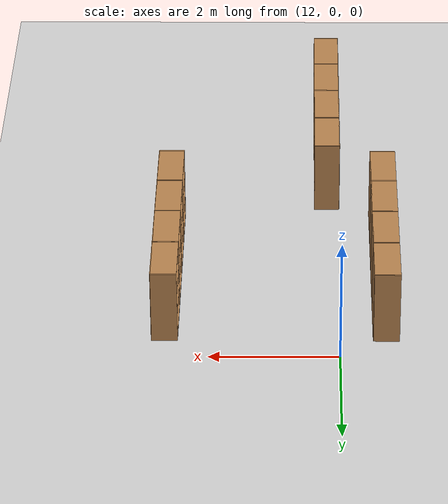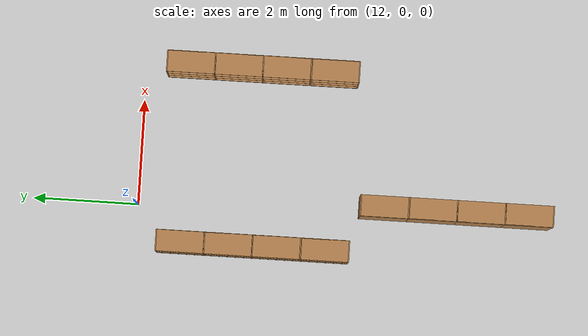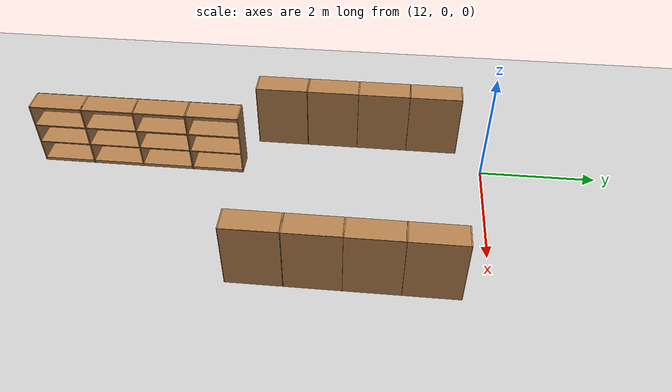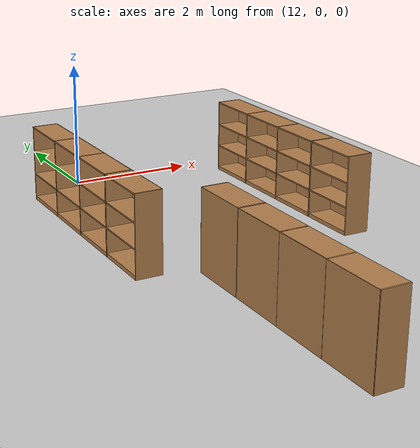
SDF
<sdf version="1.6">
 <world name="default">
  <model name="ground_plane">
   <static>1</static>
   <link name="link">
    <collision name="collision">
     <geometry><plane><normal>0 0 1</normal><size>100 100</size></plane></geometry>
     <surface><friction><ode><mu>100</mu><mu2>50</mu2></ode></friction></surface>
    </collision>
    <visual name="visual">
     <cast_shadows>0</cast_shadows>
     <geometry><plane><normal>0 0 1</normal><size>100 100</size></plane></geometry>
     <material>
      <script><uri>file://media/materials/scripts/gazebo.material</uri><name>Gazebo/Grey</name></script>
     </material>
    </visual>
   </link>
  </model>
  <model name="Bookself-4_clone_14_clone_3_clone_clone_1_clone_1">
   <model name="Bookself-3">
    <model name="bookshelf_0">
     <static>1</static>
     <link name="link">
      <inertial><mass>1</mass></inertial>
      <collision name="back">
       <pose>0 0.005 0.6 0 -0 0</pose>
       <geometry><box><size>0.9 0.01 1.2</size></box></geometry>
      </collision>
      <visual name="visual1">
       <pose>0 0.005 0.6 0 -0 0</pose>
       <geometry><box><size>0.9 0.01 1.2</size></box></geometry>
       <material>
        <script><uri>file://media/materials/scripts/gazebo.material</uri><name>Gazebo/Wood</name></script>
       </material>
      </visual>
      <collision name="left_side">
       <pose>0.45 -0.195 0.6 0 -0 0</pose>
       <geometry><box><size>0.02 0.4 1.2</size></box></geometry>
      </collision>
      <visual name="visual2">
       <pose>0.45 -0.195 0.6 0 -0 0</pose>
       <geometry><box><size>0.02 0.4 1.2</size></box></geometry>
       <material>
        <script><uri>file://media/materials/scripts/gazebo.material</uri><name>Gazebo/Wood</name></script>
       </material>
      </visual>
      <collision name="right_side">
       <pose>-0.45 -0.195 0.6 0 -0 0</pose>
       <geometry><box><size>0.02 0.4 1.2</size></box></geometry>
      </collision>
      <visual name="visual3">
       <pose>-0.45 -0.195 0.6 0 -0 0</pose>
       <geometry><box><size>0.02 0.4 1.2</size></box></geometry>
       <material>
        <script><uri>file://media/materials/scripts/gazebo.material</uri><name>Gazebo/Wood</name></script>
       </material>
      </visual>
      <collision name="bottom">
       <pose>0 -0.195 0.03 0 -0 0</pose>
       <geometry><box><size>0.88 0.4 0.06</size></box></geometry>
      </collision>
      <visual name="visual4">
       <pose>0 -0.195 0.03 0 -0 0</pose>
       <geometry><box><size>0.88 0.4 0.06</size></box></geometry>
       <material>
        <script><uri>file://media/materials/scripts/gazebo.material</uri><name>Gazebo/Wood</name></script>
       </material>
      </visual>
      <collision name="top">
       <pose>0 -0.195 1.19 0 -0 0</pose>
       <geometry><box><size>0.88 0.4 0.02</size></box></geometry>
      </collision>
      <visual name="visual5">
       <pose>0 -0.195 1.19 0 -0 0</pose>
       <geometry><box><size>0.88 0.4 0.02</size></box></geometry>
       <material>
        <script><uri>file://media/materials/scripts/gazebo.material</uri><name>Gazebo/Wood</name></script>
       </material>
      </visual>
      <collision name="low_shelf">
       <pose>0 -0.195 0.43 0 -0 0</pose>
       <geometry><box><size>0.88 0.4 0.02</size></box></geometry>
      </collision>
      <visual name="visual6">
       <pose>0 -0.195 0.43 0 -0 0</pose>
       <geometry><box><size>0.88 0.4 0.02</size></box></geometry>
       <material>
        <script><uri>file://media/materials/scripts/gazebo.material</uri><name>Gazebo/Wood</name></script>
       </material>
      </visual>
      <collision name="high_shelf">
       <pose>0 -0.195 0.8 0 -0 0</pose>
       <geometry><box><size>0.88 0.4 0.02</size></box></geometry>
      </collision>
      <visual name="visual7">
       <pose>0 -0.195 0.8 0 -0 0</pose>
       <geometry><box><size>0.88 0.4 0.02</size></box></geometry>
       <material>
        <script><uri>file://media/materials/scripts/gazebo.material</uri><name>Gazebo/Wood</name></script>
       </material>
      </visual>
     </link>
     <pose>-0.903039 0 0 0 -0 0</pose>
    </model>
    <model name="bookshelf_1">
     <static>1</static>
     <link name="link">
      <inertial><mass>1</mass></inertial>
      <collision name="back">
       <pose>0 0.005 0.6 0 -0 0</pose>
       <geometry><box><size>0.9 0.01 1.2</size></box></geometry>
      </collision>
      <visual name="visual1">
       <pose>0 0.005 0.6 0 -0 0</pose>
       <geometry><box><size>0.9 0.01 1.2</size></box></geometry>
       <material>
        <script><uri>file://media/materials/scripts/gazebo.material</uri><name>Gazebo/Wood</name></script>
       </material>
      </visual>
      <collision name="left_side">
       <pose>0.45 -0.195 0.6 0 -0 0</pose>
       <geometry><box><size>0.02 0.4 1.2</size></box></geometry>
      </collision>
      <visual name="visual2">
       <pose>0.45 -0.195 0.6 0 -0 0</pose>
       <geometry><box><size>0.02 0.4 1.2</size></box></geometry>
       <material>
        <script><uri>file://media/materials/scripts/gazebo.material</uri><name>Gazebo/Wood</name></script>
       </material>
      </visual>
      <collision name="right_side">
       <pose>-0.45 -0.195 0.6 0 -0 0</pose>
       <geometry><box><size>0.02 0.4 1.2</size></box></geometry>
      </collision>
      <visual name="visual3">
       <pose>-0.45 -0.195 0.6 0 -0 0</pose>
       <geometry><box><size>0.02 0.4 1.2</size></box></geometry>
       <material>
        <script><uri>file://media/materials/scripts/gazebo.material</uri><name>Gazebo/Wood</name></script>
       </material>
      </visual>
      <collision name="bottom">
       <pose>0 -0.195 0.03 0 -0 0</pose>
       <geometry><box><size>0.88 0.4 0.06</size></box></geometry>
      </collision>
      <visual name="visual4">
       <pose>0 -0.195 0.03 0 -0 0</pose>
       <geometry><box><size>0.88 0.4 0.06</size></box></geometry>
       <material>
        <script><uri>file://media/materials/scripts/gazebo.material</uri><name>Gazebo/Wood</name></script>
       </material>
      </visual>
      <collision name="top">
       <pose>0 -0.195 1.19 0 -0 0</pose>
       <geometry><box><size>0.88 0.4 0.02</size></box></geometry>
      </collision>
      <visual name="visual5">
       <pose>0 -0.195 1.19 0 -0 0</pose>
       <geometry><box><size>0.88 0.4 0.02</size></box></geometry>
       <material>
        <script><uri>file://media/materials/scripts/gazebo.material</uri><name>Gazebo/Wood</name></script>
       </material>
      </visual>
      <collision name="low_shelf">
       <pose>0 -0.195 0.43 0 -0 0</pose>
       <geometry><box><size>0.88 0.4 0.02</size></box></geometry>
      </collision>
      <visual name="visual6">
       <pose>0 -0.195 0.43 0 -0 0</pose>
       <geometry><box><size>0.88 0.4 0.02</size></box></geometry>
       <material>
        <script><uri>file://media/materials/scripts/gazebo.material</uri><name>Gazebo/Wood</name></script>
       </material>
      </visual>
      <collision name="high_shelf">
       <pose>0 -0.195 0.8 0 -0 0</pose>
       <geometry><box><size>0.88 0.4 0.02</size></box></geometry>
      </collision>
      <visual name="visual7">
       <pose>0 -0.195 0.8 0 -0 0</pose>
       <geometry><box><size>0.88 0.4 0.02</size></box></geometry>
       <material>
        <script><uri>file://media/materials/scripts/gazebo.material</uri><name>Gazebo/Wood</name></script>
       </material>
      </visual>
     </link>
     <pose>0.000535 0 0 0 -0 0</pose>
    </model>
    <model name="bookshelf_1_clone">
     <static>1</static>
     <link name="link">
      <inertial><mass>1</mass></inertial>
      <collision name="back">
       <pose>0 0.005 0.6 0 -0 0</pose>
       <geometry><box><size>0.9 0.01 1.2</size></box></geometry>
      </collision>
      <visual name="visual1">
       <pose>0 0.005 0.6 0 -0 0</pose>
       <geometry><box><size>0.9 0.01 1.2</size></box></geometry>
       <material>
        <script><uri>file://media/materials/scripts/gazebo.material</uri><name>Gazebo/Wood</name></script>
       </material>
      </visual>
      <collision name="left_side">
       <pose>0.45 -0.195 0.6 0 -0 0</pose>
       <geometry><box><size>0.02 0.4 1.2</size></box></geometry>
      </collision>
      <visual name="visual2">
       <pose>0.45 -0.195 0.6 0 -0 0</pose>
       <geometry><box><size>0.02 0.4 1.2</size></box></geometry>
       <material>
        <script><uri>file://media/materials/scripts/gazebo.material</uri><name>Gazebo/Wood</name></script>
       </material>
      </visual>
      <collision name="right_side">
       <pose>-0.45 -0.195 0.6 0 -0 0</pose>
       <geometry><box><size>0.02 0.4 1.2</size></box></geometry>
      </collision>
      <visual name="visual3">
       <pose>-0.45 -0.195 0.6 0 -0 0</pose>
       <geometry><box><size>0.02 0.4 1.2</size></box></geometry>
       <material>
        <script><uri>file://media/materials/scripts/gazebo.material</uri><name>Gazebo/Wood</name></script>
       </material>
      </visual>
      <collision name="bottom">
       <pose>0 -0.195 0.03 0 -0 0</pose>
       <geometry><box><size>0.88 0.4 0.06</size></box></geometry>
      </collision>
      <visual name="visual4">
       <pose>0 -0.195 0.03 0 -0 0</pose>
       <geometry><box><size>0.88 0.4 0.06</size></box></geometry>
       <material>
        <script><uri>file://media/materials/scripts/gazebo.material</uri><name>Gazebo/Wood</name></script>
       </material>
      </visual>
      <collision name="top">
       <pose>0 -0.195 1.19 0 -0 0</pose>
       <geometry><box><size>0.88 0.4 0.02</size></box></geometry>
      </collision>
      <visual name="visual5">
       <pose>0 -0.195 1.19 0 -0 0</pose>
       <geometry><box><size>0.88 0.4 0.02</size></box></geometry>
       <material>
        <script><uri>file://media/materials/scripts/gazebo.material</uri><name>Gazebo/Wood</name></script>
       </material>
      </visual>
      <collision name="low_shelf">
       <pose>0 -0.195 0.43 0 -0 0</pose>
       <geometry><box><size>0.88 0.4 0.02</size></box></geometry>
      </collision>
      <visual name="visual6">
       <pose>0 -0.195 0.43 0 -0 0</pose>
       <geometry><box><size>0.88 0.4 0.02</size></box></geometry>
       <material>
        <script><uri>file://media/materials/scripts/gazebo.material</uri><name>Gazebo/Wood</name></script>
       </material>
      </visual>
      <collision name="high_shelf">
       <pose>0 -0.195 0.8 0 -0 0</pose>
       <geometry><box><size>0.88 0.4 0.02</size></box></geometry>
      </collision>
      <visual name="visual7">
       <pose>0 -0.195 0.8 0 -0 0</pose>
       <geometry><box><size>0.88 0.4 0.02</size></box></geometry>
       <material>
        <script><uri>file://media/materials/scripts/gazebo.material</uri><name>Gazebo/Wood</name></script>
       </material>
      </visual>
     </link>
     <pose>0.902502 0 0 0 -0 0</pose>
    </model>
    <static>1</static>
    <pose>-0.906894 3e-05 0 0 -0 0</pose>
   </model>
   <model name="bookshelf">
    <static>1</static>
    <link name="link">
     <inertial><mass>1</mass></inertial>
     <collision name="back">
      <pose>0 0.005 0.6 0 -0 0</pose>
      <geometry><box><size>0.9 0.01 1.2</size></box></geometry>
     </collision>
     <visual name="visual1">
      <pose>0 0.005 0.6 0 -0 0</pose>
      <geometry><box><size>0.9 0.01 1.2</size></box></geometry>
      <material>
       <script><uri>file://media/materials/scripts/gazebo.material</uri><name>Gazebo/Wood</name></script>
      </material>
     </visual>
     <collision name="left_side">
      <pose>0.45 -0.195 0.6 0 -0 0</pose>
      <geometry><box><size>0.02 0.4 1.2</size></box></geometry>
     </collision>
     <visual name="visual2">
      <pose>0.45 -0.195 0.6 0 -0 0</pose>
      <geometry><box><size>0.02 0.4 1.2</size></box></geometry>
      <material>
       <script><uri>file://media/materials/scripts/gazebo.material</uri><name>Gazebo/Wood</name></script>
      </material>
     </visual>
     <collision name="right_side">
      <pose>-0.45 -0.195 0.6 0 -0 0</pose>
      <geometry><box><size>0.02 0.4 1.2</size></box></geometry>
     </collision>
     <visual name="visual3">
      <pose>-0.45 -0.195 0.6 0 -0 0</pose>
      <geometry><box><size>0.02 0.4 1.2</size></box></geometry>
      <material>
       <script><uri>file://media/materials/scripts/gazebo.material</uri><name>Gazebo/Wood</name></script>
      </material>
     </visual>
     <collision name="bottom">
      <pose>0 -0.195 0.03 0 -0 0</pose>
      <geometry><box><size>0.88 0.4 0.06</size></box></geometry>
     </collision>
     <visual name="visual4">
      <pose>0 -0.195 0.03 0 -0 0</pose>
      <geometry><box><size>0.88 0.4 0.06</size></box></geometry>
      <material>
       <script><uri>file://media/materials/scripts/gazebo.material</uri><name>Gazebo/Wood</name></script>
      </material>
     </visual>
     <collision name="top">
      <pose>0 -0.195 1.19 0 -0 0</pose>
      <geometry><box><size>0.88 0.4 0.02</size></box></geometry>
     </collision>
     <visual name="visual5">
      <pose>0 -0.195 1.19 0 -0 0</pose>
      <geometry><box><size>0.88 0.4 0.02</size></box></geometry>
      <material>
       <script><uri>file://media/materials/scripts/gazebo.material</uri><name>Gazebo/Wood</name></script>
      </material>
     </visual>
     <collision name="low_shelf">
      <pose>0 -0.195 0.43 0 -0 0</pose>
      <geometry><box><size>0.88 0.4 0.02</size></box></geometry>
     </collision>
     <visual name="visual6">
      <pose>0 -0.195 0.43 0 -0 0</pose>
      <geometry><box><size>0.88 0.4 0.02</size></box></geometry>
      <material>
       <script><uri>file://media/materials/scripts/gazebo.material</uri><name>Gazebo/Wood</name></script>
      </material>
     </visual>
     <collision name="high_shelf">
      <pose>0 -0.195 0.8 0 -0 0</pose>
      <geometry><box><size>0.88 0.4 0.02</size></box></geometry>
     </collision>
     <visual name="visual7">
      <pose>0 -0.195 0.8 0 -0 0</pose>
      <geometry><box><size>0.88 0.4 0.02</size></box></geometry>
      <material>
       <script><uri>file://media/materials/scripts/gazebo.material</uri><name>Gazebo/Wood</name></script>
      </material>
     </visual>
    </link>
    <pose>0.906808 3e-05 0 0 -0 0</pose>
   </model>
   <static>0</static>
   <pose>14.867 -2.69489 0 0 0 -1.5707</pose>
  </model>
  <model name="Bookself-4_clone_14_clone_3_clone_clone_1_clone_3">
   <model name="Bookself-3">
    <model name="bookshelf_0">
     <static>1</static>
     <link name="link">
      <inertial><mass>1</mass></inertial>
      <collision name="back">
       <pose>0 0.005 0.6 0 -0 0</pose>
       <geometry><box><size>0.9 0.01 1.2</size></box></geometry>
      </collision>
      <visual name="visual1">
       <pose>0 0.005 0.6 0 -0 0</pose>
       <geometry><box><size>0.9 0.01 1.2</size></box></geometry>
       <material>
        <script><uri>file://media/materials/scripts/gazebo.material</uri><name>Gazebo/Wood</name></script>
       </material>
      </visual>
      <collision name="left_side">
       <pose>0.45 -0.195 0.6 0 -0 0</pose>
       <geometry><box><size>0.02 0.4 1.2</size></box></geometry>
      </collision>
      <visual name="visual2">
       <pose>0.45 -0.195 0.6 0 -0 0</pose>
       <geometry><box><size>0.02 0.4 1.2</size></box></geometry>
       <material>
        <script><uri>file://media/materials/scripts/gazebo.material</uri><name>Gazebo/Wood</name></script>
       </material>
      </visual>
      <collision name="right_side">
       <pose>-0.45 -0.195 0.6 0 -0 0</pose>
       <geometry><box><size>0.02 0.4 1.2</size></box></geometry>
      </collision>
      <visual name="visual3">
       <pose>-0.45 -0.195 0.6 0 -0 0</pose>
       <geometry><box><size>0.02 0.4 1.2</size></box></geometry>
       <material>
        <script><uri>file://media/materials/scripts/gazebo.material</uri><name>Gazebo/Wood</name></script>
       </material>
      </visual>
      <collision name="bottom">
       <pose>0 -0.195 0.03 0 -0 0</pose>
       <geometry><box><size>0.88 0.4 0.06</size></box></geometry>
      </collision>
      <visual name="visual4">
       <pose>0 -0.195 0.03 0 -0 0</pose>
       <geometry><box><size>0.88 0.4 0.06</size></box></geometry>
       <material>
        <script><uri>file://media/materials/scripts/gazebo.material</uri><name>Gazebo/Wood</name></script>
       </material>
      </visual>
      <collision name="top">
       <pose>0 -0.195 1.19 0 -0 0</pose>
       <geometry><box><size>0.88 0.4 0.02</size></box></geometry>
      </collision>
      <visual name="visual5">
       <pose>0 -0.195 1.19 0 -0 0</pose>
       <geometry><box><size>0.88 0.4 0.02</size></box></geometry>
       <material>
        <script><uri>file://media/materials/scripts/gazebo.material</uri><name>Gazebo/Wood</name></script>
       </material>
      </visual>
      <collision name="low_shelf">
       <pose>0 -0.195 0.43 0 -0 0</pose>
       <geometry><box><size>0.88 0.4 0.02</size></box></geometry>
      </collision>
      <visual name="visual6">
       <pose>0 -0.195 0.43 0 -0 0</pose>
       <geometry><box><size>0.88 0.4 0.02</size></box></geometry>
       <material>
        <script><uri>file://media/materials/scripts/gazebo.material</uri><name>Gazebo/Wood</name></script>
       </material>
      </visual>
      <collision name="high_shelf">
       <pose>0 -0.195 0.8 0 -0 0</pose>
       <geometry><box><size>0.88 0.4 0.02</size></box></geometry>
      </collision>
      <visual name="visual7">
       <pose>0 -0.195 0.8 0 -0 0</pose>
       <geometry><box><size>0.88 0.4 0.02</size></box></geometry>
       <material>
        <script><uri>file://media/materials/scripts/gazebo.material</uri><name>Gazebo/Wood</name></script>
       </material>
      </visual>
     </link>
     <pose>-0.903039 0 0 0 -0 0</pose>
    </model>
    <model name="bookshelf_1">
     <static>1</static>
     <link name="link">
      <inertial><mass>1</mass></inertial>
      <collision name="back">
       <pose>0 0.005 0.6 0 -0 0</pose>
       <geometry><box><size>0.9 0.01 1.2</size></box></geometry>
      </collision>
      <visual name="visual1">
       <pose>0 0.005 0.6 0 -0 0</pose>
       <geometry><box><size>0.9 0.01 1.2</size></box></geometry>
       <material>
        <script><uri>file://media/materials/scripts/gazebo.material</uri><name>Gazebo/Wood</name></script>
       </material>
      </visual>
      <collision name="left_side">
       <pose>0.45 -0.195 0.6 0 -0 0</pose>
       <geometry><box><size>0.02 0.4 1.2</size></box></geometry>
      </collision>
      <visual name="visual2">
       <pose>0.45 -0.195 0.6 0 -0 0</pose>
       <geometry><box><size>0.02 0.4 1.2</size></box></geometry>
       <material>
        <script><uri>file://media/materials/scripts/gazebo.material</uri><name>Gazebo/Wood</name></script>
       </material>
      </visual>
      <collision name="right_side">
       <pose>-0.45 -0.195 0.6 0 -0 0</pose>
       <geometry><box><size>0.02 0.4 1.2</size></box></geometry>
      </collision>
      <visual name="visual3">
       <pose>-0.45 -0.195 0.6 0 -0 0</pose>
       <geometry><box><size>0.02 0.4 1.2</size></box></geometry>
       <material>
        <script><uri>file://media/materials/scripts/gazebo.material</uri><name>Gazebo/Wood</name></script>
       </material>
      </visual>
      <collision name="bottom">
       <pose>0 -0.195 0.03 0 -0 0</pose>
       <geometry><box><size>0.88 0.4 0.06</size></box></geometry>
      </collision>
      <visual name="visual4">
       <pose>0 -0.195 0.03 0 -0 0</pose>
       <geometry><box><size>0.88 0.4 0.06</size></box></geometry>
       <material>
        <script><uri>file://media/materials/scripts/gazebo.material</uri><name>Gazebo/Wood</name></script>
       </material>
      </visual>
      <collision name="top">
       <pose>0 -0.195 1.19 0 -0 0</pose>
       <geometry><box><size>0.88 0.4 0.02</size></box></geometry>
      </collision>
      <visual name="visual5">
       <pose>0 -0.195 1.19 0 -0 0</pose>
       <geometry><box><size>0.88 0.4 0.02</size></box></geometry>
       <material>
        <script><uri>file://media/materials/scripts/gazebo.material</uri><name>Gazebo/Wood</name></script>
       </material>
      </visual>
      <collision name="low_shelf">
       <pose>0 -0.195 0.43 0 -0 0</pose>
       <geometry><box><size>0.88 0.4 0.02</size></box></geometry>
      </collision>
      <visual name="visual6">
       <pose>0 -0.195 0.43 0 -0 0</pose>
       <geometry><box><size>0.88 0.4 0.02</size></box></geometry>
       <material>
        <script><uri>file://media/materials/scripts/gazebo.material</uri><name>Gazebo/Wood</name></script>
       </material>
      </visual>
      <collision name="high_shelf">
       <pose>0 -0.195 0.8 0 -0 0</pose>
       <geometry><box><size>0.88 0.4 0.02</size></box></geometry>
      </collision>
      <visual name="visual7">
       <pose>0 -0.195 0.8 0 -0 0</pose>
       <geometry><box><size>0.88 0.4 0.02</size></box></geometry>
       <material>
        <script><uri>file://media/materials/scripts/gazebo.material</uri><name>Gazebo/Wood</name></script>
       </material>
      </visual>
     </link>
     <pose>0.000535 0 0 0 -0 0</pose>
    </model>
    <model name="bookshelf_1_clone">
     <static>1</static>
     <link name="link">
      <inertial><mass>1</mass></inertial>
      <collision name="back">
       <pose>0 0.005 0.6 0 -0 0</pose>
       <geometry><box><size>0.9 0.01 1.2</size></box></geometry>
      </collision>
      <visual name="visual1">
       <pose>0 0.005 0.6 0 -0 0</pose>
       <geometry><box><size>0.9 0.01 1.2</size></box></geometry>
       <material>
        <script><uri>file://media/materials/scripts/gazebo.material</uri><name>Gazebo/Wood</name></script>
       </material>
      </visual>
      <collision name="left_side">
       <pose>0.45 -0.195 0.6 0 -0 0</pose>
       <geometry><box><size>0.02 0.4 1.2</size></box></geometry>
      </collision>
      <visual name="visual2">
       <pose>0.45 -0.195 0.6 0 -0 0</pose>
       <geometry><box><size>0.02 0.4 1.2</size></box></geometry>
       <material>
        <script><uri>file://media/materials/scripts/gazebo.material</uri><name>Gazebo/Wood</name></script>
       </material>
      </visual>
      <collision name="right_side">
       <pose>-0.45 -0.195 0.6 0 -0 0</pose>
       <geometry><box><size>0.02 0.4 1.2</size></box></geometry>
      </collision>
      <visual name="visual3">
       <pose>-0.45 -0.195 0.6 0 -0 0</pose>
       <geometry><box><size>0.02 0.4 1.2</size></box></geometry>
       <material>
        <script><uri>file://media/materials/scripts/gazebo.material</uri><name>Gazebo/Wood</name></script>
       </material>
      </visual>
      <collision name="bottom">
       <pose>0 -0.195 0.03 0 -0 0</pose>
       <geometry><box><size>0.88 0.4 0.06</size></box></geometry>
      </collision>
      <visual name="visual4">
       <pose>0 -0.195 0.03 0 -0 0</pose>
       <geometry><box><size>0.88 0.4 0.06</size></box></geometry>
       <material>
        <script><uri>file://media/materials/scripts/gazebo.material</uri><name>Gazebo/Wood</name></script>
       </material>
      </visual>
      <collision name="top">
       <pose>0 -0.195 1.19 0 -0 0</pose>
       <geometry><box><size>0.88 0.4 0.02</size></box></geometry>
      </collision>
      <visual name="visual5">
       <pose>0 -0.195 1.19 0 -0 0</pose>
       <geometry><box><size>0.88 0.4 0.02</size></box></geometry>
       <material>
        <script><uri>file://media/materials/scripts/gazebo.material</uri><name>Gazebo/Wood</name></script>
       </material>
      </visual>
      <collision name="low_shelf">
       <pose>0 -0.195 0.43 0 -0 0</pose>
       <geometry><box><size>0.88 0.4 0.02</size></box></geometry>
      </collision>
      <visual name="visual6">
       <pose>0 -0.195 0.43 0 -0 0</pose>
       <geometry><box><size>0.88 0.4 0.02</size></box></geometry>
       <material>
        <script><uri>file://media/materials/scripts/gazebo.material</uri><name>Gazebo/Wood</name></script>
       </material>
      </visual>
      <collision name="high_shelf">
       <pose>0 -0.195 0.8 0 -0 0</pose>
       <geometry><box><size>0.88 0.4 0.02</size></box></geometry>
      </collision>
      <visual name="visual7">
       <pose>0 -0.195 0.8 0 -0 0</pose>
       <geometry><box><size>0.88 0.4 0.02</size></box></geometry>
       <material>
        <script><uri>file://media/materials/scripts/gazebo.material</uri><name>Gazebo/Wood</name></script>
       </material>
      </visual>
     </link>
     <pose>0.902502 0 0 0 -0 0</pose>
    </model>
    <static>1</static>
    <pose>-0.906894 3e-05 0 0 -0 0</pose>
   </model>
   <model name="bookshelf">
    <static>1</static>
    <link name="link">
     <inertial><mass>1</mass></inertial>
     <collision name="back">
      <pose>0 0.005 0.6 0 -0 0</pose>
      <geometry><box><size>0.9 0.01 1.2</size></box></geometry>
     </collision>
     <visual name="visual1">
      <pose>0 0.005 0.6 0 -0 0</pose>
      <geometry><box><size>0.9 0.01 1.2</size></box></geometry>
      <material>
       <script><uri>file://media/materials/scripts/gazebo.material</uri><name>Gazebo/Wood</name></script>
      </material>
     </visual>
     <collision name="left_side">
      <pose>0.45 -0.195 0.6 0 -0 0</pose>
      <geometry><box><size>0.02 0.4 1.2</size></box></geometry>
     </collision>
     <visual name="visual2">
      <pose>0.45 -0.195 0.6 0 -0 0</pose>
      <geometry><box><size>0.02 0.4 1.2</size></box></geometry>
      <material>
       <script><uri>file://media/materials/scripts/gazebo.material</uri><name>Gazebo/Wood</name></script>
      </material>
     </visual>
     <collision name="right_side">
      <pose>-0.45 -0.195 0.6 0 -0 0</pose>
      <geometry><box><size>0.02 0.4 1.2</size></box></geometry>
     </collision>
     <visual name="visual3">
      <pose>-0.45 -0.195 0.6 0 -0 0</pose>
      <geometry><box><size>0.02 0.4 1.2</size></box></geometry>
      <material>
       <script><uri>file://media/materials/scripts/gazebo.material</uri><name>Gazebo/Wood</name></script>
      </material>
     </visual>
     <collision name="bottom">
      <pose>0 -0.195 0.03 0 -0 0</pose>
      <geometry><box><size>0.88 0.4 0.06</size></box></geometry>
     </collision>
     <visual name="visual4">
      <pose>0 -0.195 0.03 0 -0 0</pose>
      <geometry><box><size>0.88 0.4 0.06</size></box></geometry>
      <material>
       <script><uri>file://media/materials/scripts/gazebo.material</uri><name>Gazebo/Wood</name></script>
      </material>
     </visual>
     <collision name="top">
      <pose>0 -0.195 1.19 0 -0 0</pose>
      <geometry><box><size>0.88 0.4 0.02</size></box></geometry>
     </collision>
     <visual name="visual5">
      <pose>0 -0.195 1.19 0 -0 0</pose>
      <geometry><box><size>0.88 0.4 0.02</size></box></geometry>
      <material>
       <script><uri>file://media/materials/scripts/gazebo.material</uri><name>Gazebo/Wood</name></script>
      </material>
     </visual>
     <collision name="low_shelf">
      <pose>0 -0.195 0.43 0 -0 0</pose>
      <geometry><box><size>0.88 0.4 0.02</size></box></geometry>
     </collision>
     <visual name="visual6">
      <pose>0 -0.195 0.43 0 -0 0</pose>
      <geometry><box><size>0.88 0.4 0.02</size></box></geometry>
      <material>
       <script><uri>file://media/materials/scripts/gazebo.material</uri><name>Gazebo/Wood</name></script>
      </material>
     </visual>
     <collision name="high_shelf">
      <pose>0 -0.195 0.8 0 -0 0</pose>
      <geometry><box><size>0.88 0.4 0.02</size></box></geometry>
     </collision>
     <visual name="visual7">
      <pose>0 -0.195 0.8 0 -0 0</pose>
      <geometry><box><size>0.88 0.4 0.02</size></box></geometry>
      <material>
       <script><uri>file://media/materials/scripts/gazebo.material</uri><name>Gazebo/Wood</name></script>
      </material>
     </visual>
    </link>
    <pose>0.906808 3e-05 0 0 -0 0</pose>
   </model>
   <static>0</static>
   <pose>11.492 -2.69489 0 0 0 -1.5707</pose>
  </model>
  <model name="Bookself-4_clone_14_clone_3_clone_clone_1_clone_0_clone">
   <model name="Bookself-3">
    <model name="bookshelf_0">
     <static>1</static>
     <link name="link">
      <inertial><mass>1</mass></inertial>
      <collision name="back">
       <pose>0 0.005 0.6 0 -0 0</pose>
       <geometry><box><size>0.9 0.01 1.2</size></box></geometry>
      </collision>
      <visual name="visual1">
       <pose>0 0.005 0.6 0 -0 0</pose>
       <geometry><box><size>0.9 0.01 1.2</size></box></geometry>
       <material>
        <script><uri>file://media/materials/scripts/gazebo.material</uri><name>Gazebo/Wood</name></script>
       </material>
      </visual>
      <collision name="left_side">
       <pose>0.45 -0.195 0.6 0 -0 0</pose>
       <geometry><box><size>0.02 0.4 1.2</size></box></geometry>
      </collision>
      <visual name="visual2">
       <pose>0.45 -0.195 0.6 0 -0 0</pose>
       <geometry><box><size>0.02 0.4 1.2</size></box></geometry>
       <material>
        <script><uri>file://media/materials/scripts/gazebo.material</uri><name>Gazebo/Wood</name></script>
       </material>
      </visual>
      <collision name="right_side">
       <pose>-0.45 -0.195 0.6 0 -0 0</pose>
       <geometry><box><size>0.02 0.4 1.2</size></box></geometry>
      </collision>
      <visual name="visual3">
       <pose>-0.45 -0.195 0.6 0 -0 0</pose>
       <geometry><box><size>0.02 0.4 1.2</size></box></geometry>
       <material>
        <script><uri>file://media/materials/scripts/gazebo.material</uri><name>Gazebo/Wood</name></script>
       </material>
      </visual>
      <collision name="bottom">
       <pose>0 -0.195 0.03 0 -0 0</pose>
       <geometry><box><size>0.88 0.4 0.06</size></box></geometry>
      </collision>
      <visual name="visual4">
       <pose>0 -0.195 0.03 0 -0 0</pose>
       <geometry><box><size>0.88 0.4 0.06</size></box></geometry>
       <material>
        <script><uri>file://media/materials/scripts/gazebo.material</uri><name>Gazebo/Wood</name></script>
       </material>
      </visual>
      <collision name="top">
       <pose>0 -0.195 1.19 0 -0 0</pose>
       <geometry><box><size>0.88 0.4 0.02</size></box></geometry>
      </collision>
      <visual name="visual5">
       <pose>0 -0.195 1.19 0 -0 0</pose>
       <geometry><box><size>0.88 0.4 0.02</size></box></geometry>
       <material>
        <script><uri>file://media/materials/scripts/gazebo.material</uri><name>Gazebo/Wood</name></script>
       </material>
      </visual>
      <collision name="low_shelf">
       <pose>0 -0.195 0.43 0 -0 0</pose>
       <geometry><box><size>0.88 0.4 0.02</size></box></geometry>
      </collision>
      <visual name="visual6">
       <pose>0 -0.195 0.43 0 -0 0</pose>
       <geometry><box><size>0.88 0.4 0.02</size></box></geometry>
       <material>
        <script><uri>file://media/materials/scripts/gazebo.material</uri><name>Gazebo/Wood</name></script>
       </material>
      </visual>
      <collision name="high_shelf">
       <pose>0 -0.195 0.8 0 -0 0</pose>
       <geometry><box><size>0.88 0.4 0.02</size></box></geometry>
      </collision>
      <visual name="visual7">
       <pose>0 -0.195 0.8 0 -0 0</pose>
       <geometry><box><size>0.88 0.4 0.02</size></box></geometry>
       <material>
        <script><uri>file://media/materials/scripts/gazebo.material</uri><name>Gazebo/Wood</name></script>
       </material>
      </visual>
     </link>
     <pose>-0.903039 0 0 0 -0 0</pose>
    </model>
    <model name="bookshelf_1">
     <static>1</static>
     <link name="link">
      <inertial><mass>1</mass></inertial>
      <collision name="back">
       <pose>0 0.005 0.6 0 -0 0</pose>
       <geometry><box><size>0.9 0.01 1.2</size></box></geometry>
      </collision>
      <visual name="visual1">
       <pose>0 0.005 0.6 0 -0 0</pose>
       <geometry><box><size>0.9 0.01 1.2</size></box></geometry>
       <material>
        <script><uri>file://media/materials/scripts/gazebo.material</uri><name>Gazebo/Wood</name></script>
       </material>
      </visual>
      <collision name="left_side">
       <pose>0.45 -0.195 0.6 0 -0 0</pose>
       <geometry><box><size>0.02 0.4 1.2</size></box></geometry>
      </collision>
      <visual name="visual2">
       <pose>0.45 -0.195 0.6 0 -0 0</pose>
       <geometry><box><size>0.02 0.4 1.2</size></box></geometry>
       <material>
        <script><uri>file://media/materials/scripts/gazebo.material</uri><name>Gazebo/Wood</name></script>
       </material>
      </visual>
      <collision name="right_side">
       <pose>-0.45 -0.195 0.6 0 -0 0</pose>
       <geometry><box><size>0.02 0.4 1.2</size></box></geometry>
      </collision>
      <visual name="visual3">
       <pose>-0.45 -0.195 0.6 0 -0 0</pose>
       <geometry><box><size>0.02 0.4 1.2</size></box></geometry>
       <material>
        <script><uri>file://media/materials/scripts/gazebo.material</uri><name>Gazebo/Wood</name></script>
       </material>
      </visual>
      <collision name="bottom">
       <pose>0 -0.195 0.03 0 -0 0</pose>
       <geometry><box><size>0.88 0.4 0.06</size></box></geometry>
      </collision>
      <visual name="visual4">
       <pose>0 -0.195 0.03 0 -0 0</pose>
       <geometry><box><size>0.88 0.4 0.06</size></box></geometry>
       <material>
        <script><uri>file://media/materials/scripts/gazebo.material</uri><name>Gazebo/Wood</name></script>
       </material>
      </visual>
      <collision name="top">
       <pose>0 -0.195 1.19 0 -0 0</pose>
       <geometry><box><size>0.88 0.4 0.02</size></box></geometry>
      </collision>
      <visual name="visual5">
       <pose>0 -0.195 1.19 0 -0 0</pose>
       <geometry><box><size>0.88 0.4 0.02</size></box></geometry>
       <material>
        <script><uri>file://media/materials/scripts/gazebo.material</uri><name>Gazebo/Wood</name></script>
       </material>
      </visual>
      <collision name="low_shelf">
       <pose>0 -0.195 0.43 0 -0 0</pose>
       <geometry><box><size>0.88 0.4 0.02</size></box></geometry>
      </collision>
      <visual name="visual6">
       <pose>0 -0.195 0.43 0 -0 0</pose>
       <geometry><box><size>0.88 0.4 0.02</size></box></geometry>
       <material>
        <script><uri>file://media/materials/scripts/gazebo.material</uri><name>Gazebo/Wood</name></script>
       </material>
      </visual>
      <collision name="high_shelf">
       <pose>0 -0.195 0.8 0 -0 0</pose>
       <geometry><box><size>0.88 0.4 0.02</size></box></geometry>
      </collision>
      <visual name="visual7">
       <pose>0 -0.195 0.8 0 -0 0</pose>
       <geometry><box><size>0.88 0.4 0.02</size></box></geometry>
       <material>
        <script><uri>file://media/materials/scripts/gazebo.material</uri><name>Gazebo/Wood</name></script>
       </material>
      </visual>
     </link>
     <pose>0.000535 0 0 0 -0 0</pose>
    </model>
    <model name="bookshelf_1_clone">
     <static>1</static>
     <link name="link">
      <inertial><mass>1</mass></inertial>
      <collision name="back">
       <pose>0 0.005 0.6 0 -0 0</pose>
       <geometry><box><size>0.9 0.01 1.2</size></box></geometry>
      </collision>
      <visual name="visual1">
       <pose>0 0.005 0.6 0 -0 0</pose>
       <geometry><box><size>0.9 0.01 1.2</size></box></geometry>
       <material>
        <script><uri>file://media/materials/scripts/gazebo.material</uri><name>Gazebo/Wood</name></script>
       </material>
      </visual>
      <collision name="left_side">
       <pose>0.45 -0.195 0.6 0 -0 0</pose>
       <geometry><box><size>0.02 0.4 1.2</size></box></geometry>
      </collision>
      <visual name="visual2">
       <pose>0.45 -0.195 0.6 0 -0 0</pose>
       <geometry><box><size>0.02 0.4 1.2</size></box></geometry>
       <material>
        <script><uri>file://media/materials/scripts/gazebo.material</uri><name>Gazebo/Wood</name></script>
       </material>
      </visual>
      <collision name="right_side">
       <pose>-0.45 -0.195 0.6 0 -0 0</pose>
       <geometry><box><size>0.02 0.4 1.2</size></box></geometry>
      </collision>
      <visual name="visual3">
       <pose>-0.45 -0.195 0.6 0 -0 0</pose>
       <geometry><box><size>0.02 0.4 1.2</size></box></geometry>
       <material>
        <script><uri>file://media/materials/scripts/gazebo.material</uri><name>Gazebo/Wood</name></script>
       </material>
      </visual>
      <collision name="bottom">
       <pose>0 -0.195 0.03 0 -0 0</pose>
       <geometry><box><size>0.88 0.4 0.06</size></box></geometry>
      </collision>
      <visual name="visual4">
       <pose>0 -0.195 0.03 0 -0 0</pose>
       <geometry><box><size>0.88 0.4 0.06</size></box></geometry>
       <material>
        <script><uri>file://media/materials/scripts/gazebo.material</uri><name>Gazebo/Wood</name></script>
       </material>
      </visual>
      <collision name="top">
       <pose>0 -0.195 1.19 0 -0 0</pose>
       <geometry><box><size>0.88 0.4 0.02</size></box></geometry>
      </collision>
      <visual name="visual5">
       <pose>0 -0.195 1.19 0 -0 0</pose>
       <geometry><box><size>0.88 0.4 0.02</size></box></geometry>
       <material>
        <script><uri>file://media/materials/scripts/gazebo.material</uri><name>Gazebo/Wood</name></script>
       </material>
      </visual>
      <collision name="low_shelf">
       <pose>0 -0.195 0.43 0 -0 0</pose>
       <geometry><box><size>0.88 0.4 0.02</size></box></geometry>
      </collision>
      <visual name="visual6">
       <pose>0 -0.195 0.43 0 -0 0</pose>
       <geometry><box><size>0.88 0.4 0.02</size></box></geometry>
       <material>
        <script><uri>file://media/materials/scripts/gazebo.material</uri><name>Gazebo/Wood</name></script>
       </material>
      </visual>
      <collision name="high_shelf">
       <pose>0 -0.195 0.8 0 -0 0</pose>
       <geometry><box><size>0.88 0.4 0.02</size></box></geometry>
      </collision>
      <visual name="visual7">
       <pose>0 -0.195 0.8 0 -0 0</pose>
       <geometry><box><size>0.88 0.4 0.02</size></box></geometry>
       <material>
        <script><uri>file://media/materials/scripts/gazebo.material</uri><name>Gazebo/Wood</name></script>
       </material>
      </visual>
     </link>
     <pose>0.902502 0 0 0 -0 0</pose>
    </model>
    <static>1</static>
    <pose>-0.906894 3e-05 0 0 -0 0</pose>
   </model>
   <model name="bookshelf">
    <static>1</static>
    <link name="link">
     <inertial><mass>1</mass></inertial>
     <collision name="back">
      <pose>0 0.005 0.6 0 -0 0</pose>
      <geometry><box><size>0.9 0.01 1.2</size></box></geometry>
     </collision>
     <visual name="visual1">
      <pose>0 0.005 0.6 0 -0 0</pose>
      <geometry><box><size>0.9 0.01 1.2</size></box></geometry>
      <material>
       <script><uri>file://media/materials/scripts/gazebo.material</uri><name>Gazebo/Wood</name></script>
      </material>
     </visual>
     <collision name="left_side">
      <pose>0.45 -0.195 0.6 0 -0 0</pose>
      <geometry><box><size>0.02 0.4 1.2</size></box></geometry>
     </collision>
     <visual name="visual2">
      <pose>0.45 -0.195 0.6 0 -0 0</pose>
      <geometry><box><size>0.02 0.4 1.2</size></box></geometry>
      <material>
       <script><uri>file://media/materials/scripts/gazebo.material</uri><name>Gazebo/Wood</name></script>
      </material>
     </visual>
     <collision name="right_side">
      <pose>-0.45 -0.195 0.6 0 -0 0</pose>
      <geometry><box><size>0.02 0.4 1.2</size></box></geometry>
     </collision>
     <visual name="visual3">
      <pose>-0.45 -0.195 0.6 0 -0 0</pose>
      <geometry><box><size>0.02 0.4 1.2</size></box></geometry>
      <material>
       <script><uri>file://media/materials/scripts/gazebo.material</uri><name>Gazebo/Wood</name></script>
      </material>
     </visual>
     <collision name="bottom">
      <pose>0 -0.195 0.03 0 -0 0</pose>
      <geometry><box><size>0.88 0.4 0.06</size></box></geometry>
     </collision>
     <visual name="visual4">
      <pose>0 -0.195 0.03 0 -0 0</pose>
      <geometry><box><size>0.88 0.4 0.06</size></box></geometry>
      <material>
       <script><uri>file://media/materials/scripts/gazebo.material</uri><name>Gazebo/Wood</name></script>
      </material>
     </visual>
     <collision name="top">
      <pose>0 -0.195 1.19 0 -0 0</pose>
      <geometry><box><size>0.88 0.4 0.02</size></box></geometry>
     </collision>
     <visual name="visual5">
      <pose>0 -0.195 1.19 0 -0 0</pose>
      <geometry><box><size>0.88 0.4 0.02</size></box></geometry>
      <material>
       <script><uri>file://media/materials/scripts/gazebo.material</uri><name>Gazebo/Wood</name></script>
      </material>
     </visual>
     <collision name="low_shelf">
      <pose>0 -0.195 0.43 0 -0 0</pose>
      <geometry><box><size>0.88 0.4 0.02</size></box></geometry>
     </collision>
     <visual name="visual6">
      <pose>0 -0.195 0.43 0 -0 0</pose>
      <geometry><box><size>0.88 0.4 0.02</size></box></geometry>
      <material>
       <script><uri>file://media/materials/scripts/gazebo.material</uri><name>Gazebo/Wood</name></script>
      </material>
     </visual>
     <collision name="high_shelf">
      <pose>0 -0.195 0.8 0 -0 0</pose>
      <geometry><box><size>0.88 0.4 0.02</size></box></geometry>
     </collision>
     <visual name="visual7">
      <pose>0 -0.195 0.8 0 -0 0</pose>
      <geometry><box><size>0.88 0.4 0.02</size></box></geometry>
      <material>
       <script><uri>file://media/materials/scripts/gazebo.material</uri><name>Gazebo/Wood</name></script>
      </material>
     </visual>
    </link>
    <pose>0.906808 3e-05 0 0 -0 0</pose>
   </model>
   <static>0</static>
   <pose>11.9857 -5.57855 0 0 -0 1.5707</pose>
  </model>
 </world>
</sdf>
